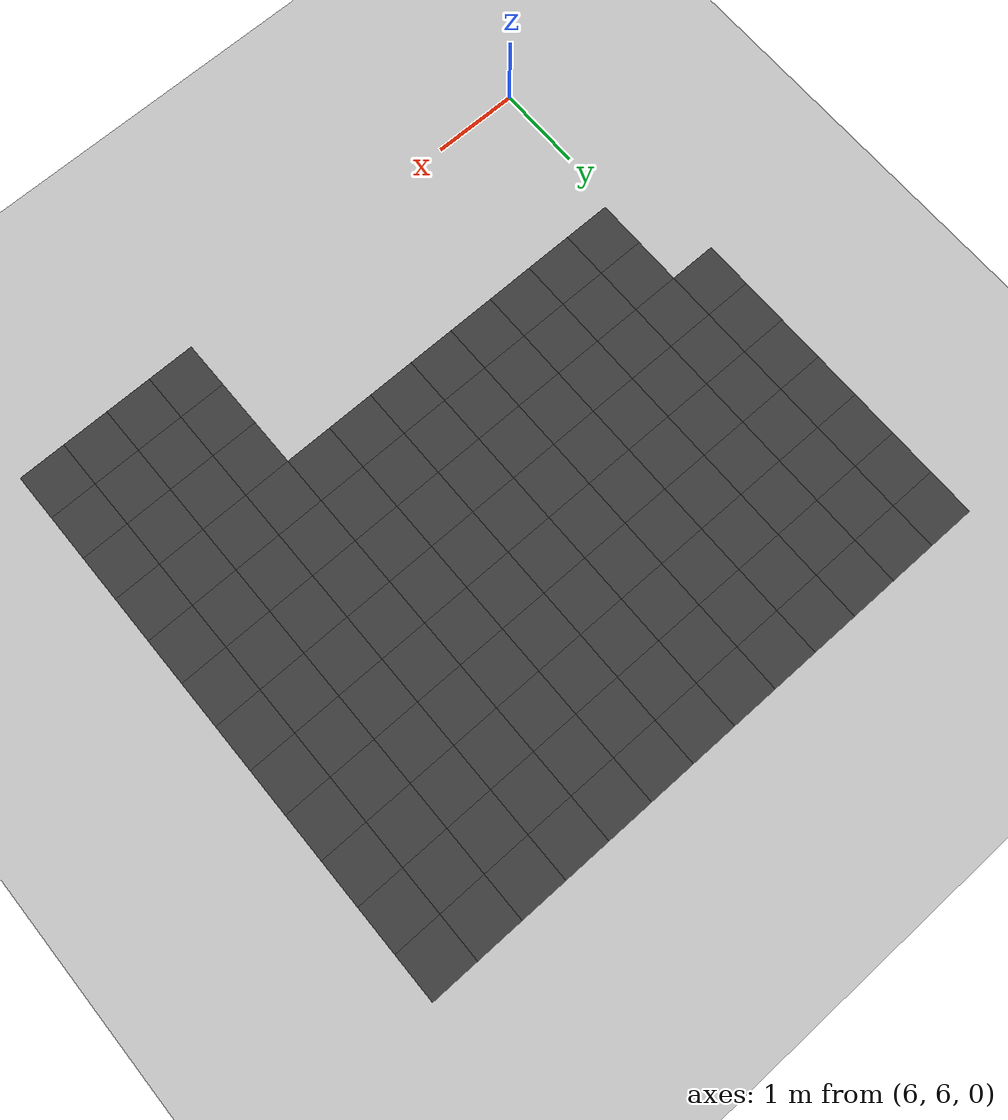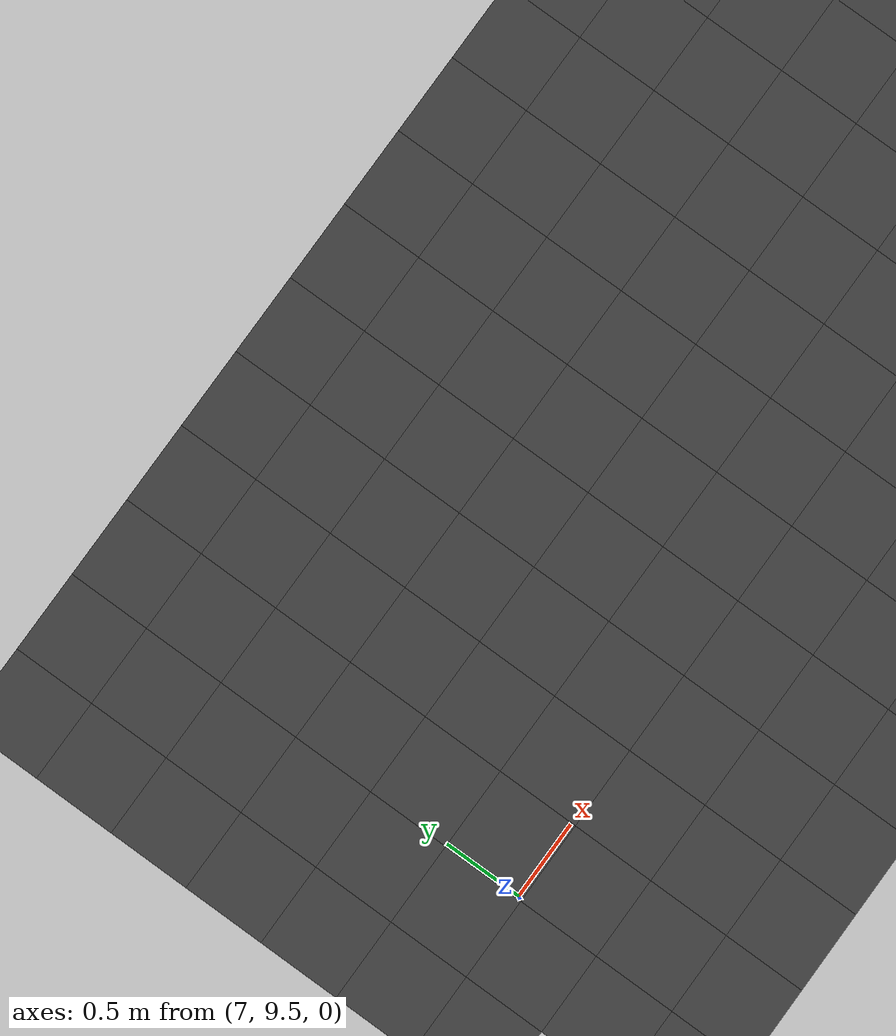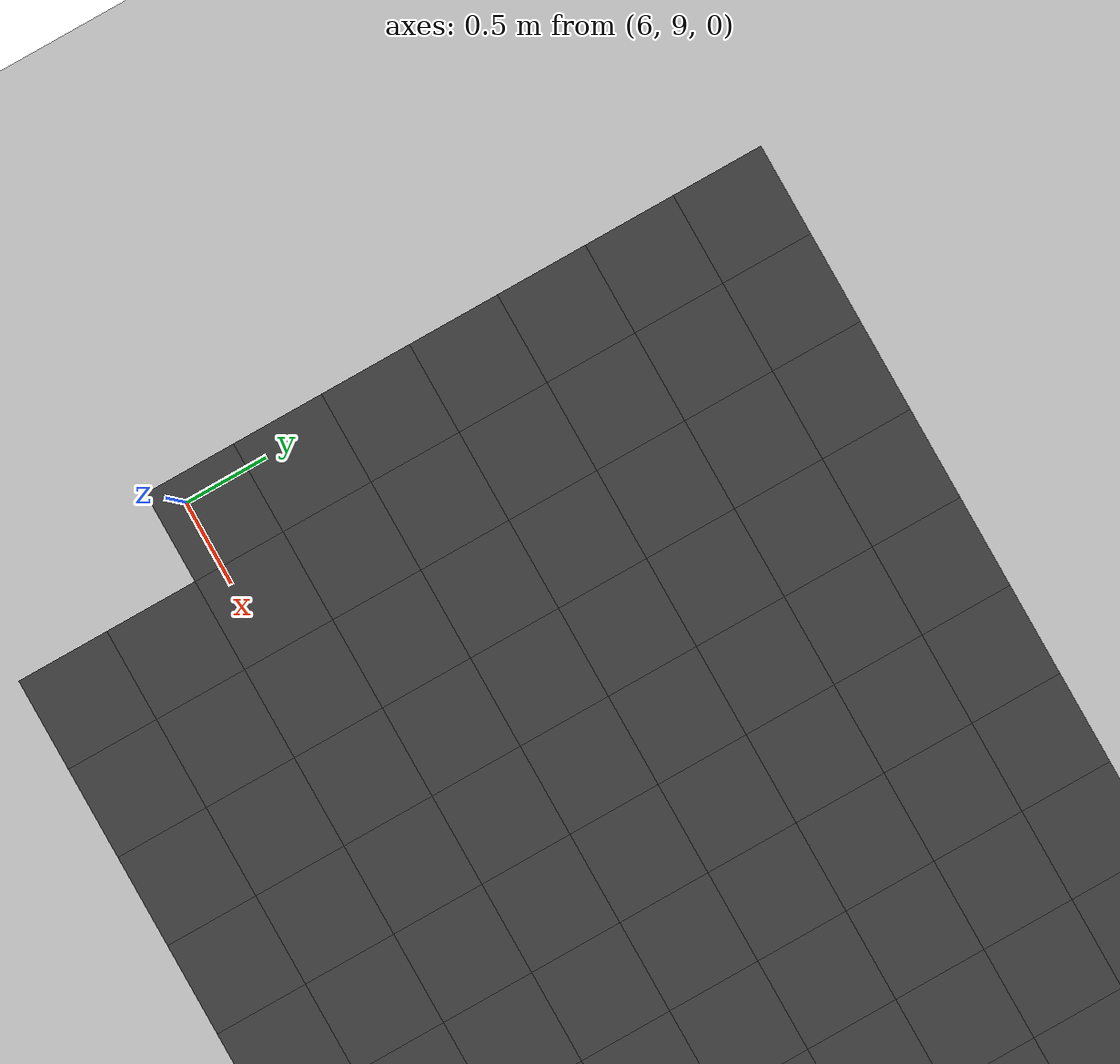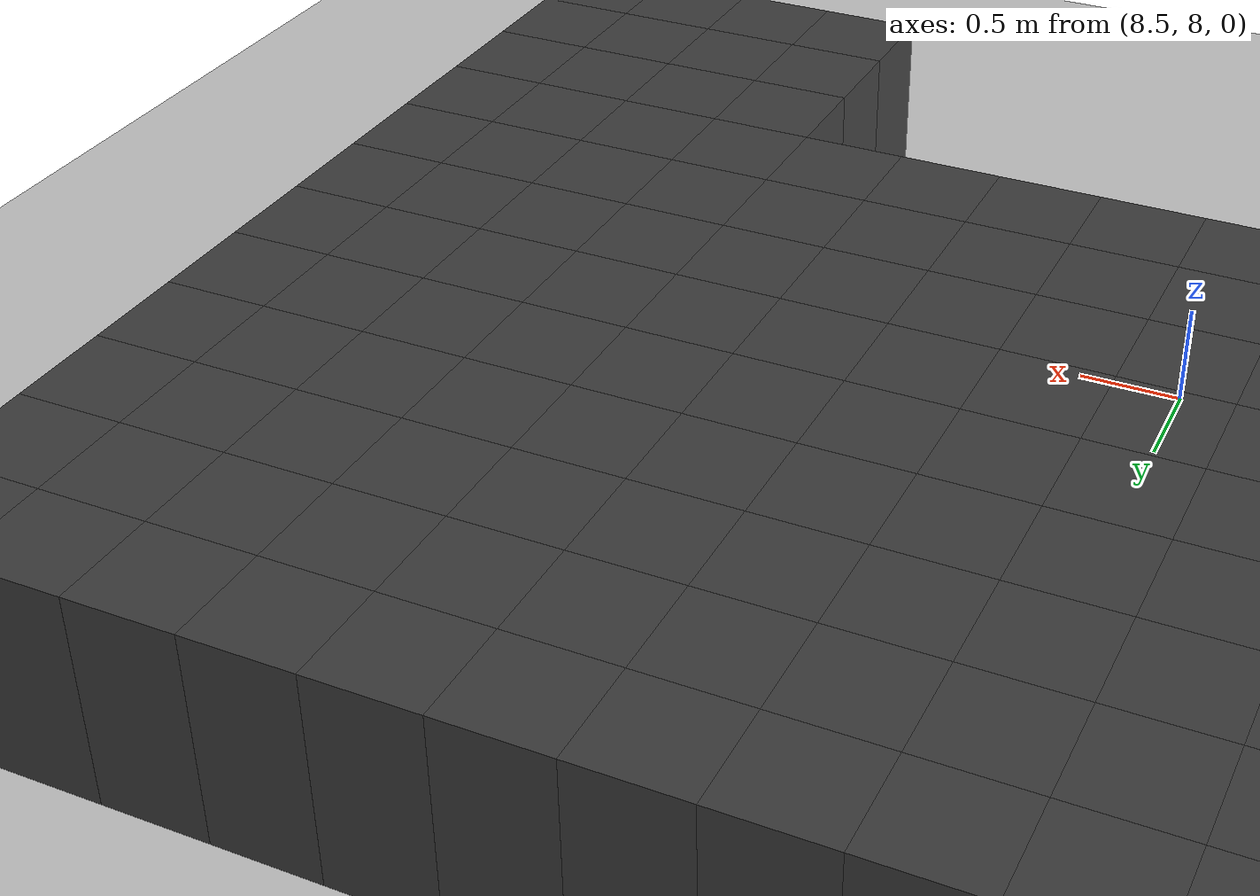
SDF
<sdf version="1.7">
 <world name="map_11779">
  <model name="ground_plane">
   <static>true</static>
   <link name="link">
    <collision name="collision">
     <geometry><plane><normal>0 0 1</normal><size>200 200</size></plane></geometry>
    </collision>
    <visual name="visual">
     <geometry><plane><normal>0 0 1</normal><size>200 200</size></plane></geometry>
     <material><ambient>0.8 0.8 0.8 1</ambient><diffuse>0.8 0.8 0.8 1</diffuse></material>
    </visual>
   </link>
  </model>
  <model name="maze_environment">
   <static>true</static>
   <link name="wall_37">
    <pose>6.250 12.250 0.500 0 0 0</pose>
    <collision name="col"><geometry><box><size>0.5 0.5 1.0</size></box></geometry></collision>
    <visual name="vis">
     <geometry><box><size>0.5 0.5 1.0</size></box></geometry>
     <material><ambient>0.15 0.15 0.15 1</ambient><diffuse>0.25 0.25 0.25 1</diffuse></material>
    </visual>
   </link>
   <link name="wall_38">
    <pose>6.750 12.250 0.500 0 0 0</pose>
    <collision name="col"><geometry><box><size>0.5 0.5 1.0</size></box></geometry></collision>
    <visual name="vis">
     <geometry><box><size>0.5 0.5 1.0</size></box></geometry>
     <material><ambient>0.15 0.15 0.15 1</ambient><diffuse>0.25 0.25 0.25 1</diffuse></material>
    </visual>
   </link>
   <link name="wall_39">
    <pose>7.250 12.250 0.500 0 0 0</pose>
    <collision name="col"><geometry><box><size>0.5 0.5 1.0</size></box></geometry></collision>
    <visual name="vis">
     <geometry><box><size>0.5 0.5 1.0</size></box></geometry>
     <material><ambient>0.15 0.15 0.15 1</ambient><diffuse>0.25 0.25 0.25 1</diffuse></material>
    </visual>
   </link>
   <link name="wall_40">
    <pose>7.750 12.250 0.500 0 0 0</pose>
    <collision name="col"><geometry><box><size>0.5 0.5 1.0</size></box></geometry></collision>
    <visual name="vis">
     <geometry><box><size>0.5 0.5 1.0</size></box></geometry>
     <material><ambient>0.15 0.15 0.15 1</ambient><diffuse>0.25 0.25 0.25 1</diffuse></material>
    </visual>
   </link>
   <link name="wall_41">
    <pose>8.250 12.250 0.500 0 0 0</pose>
    <collision name="col"><geometry><box><size>0.5 0.5 1.0</size></box></geometry></collision>
    <visual name="vis">
     <geometry><box><size>0.5 0.5 1.0</size></box></geometry>
     <material><ambient>0.15 0.15 0.15 1</ambient><diffuse>0.25 0.25 0.25 1</diffuse></material>
    </visual>
   </link>
   <link name="wall_42">
    <pose>8.750 12.250 0.500 0 0 0</pose>
    <collision name="col"><geometry><box><size>0.5 0.5 1.0</size></box></geometry></collision>
    <visual name="vis">
     <geometry><box><size>0.5 0.5 1.0</size></box></geometry>
     <material><ambient>0.15 0.15 0.15 1</ambient><diffuse>0.25 0.25 0.25 1</diffuse></material>
    </visual>
   </link>
   <link name="wall_43">
    <pose>9.250 12.250 0.500 0 0 0</pose>
    <collision name="col"><geometry><box><size>0.5 0.5 1.0</size></box></geometry></collision>
    <visual name="vis">
     <geometry><box><size>0.5 0.5 1.0</size></box></geometry>
     <material><ambient>0.15 0.15 0.15 1</ambient><diffuse>0.25 0.25 0.25 1</diffuse></material>
    </visual>
   </link>
   <link name="wall_44">
    <pose>9.750 12.250 0.500 0 0 0</pose>
    <collision name="col"><geometry><box><size>0.5 0.5 1.0</size></box></geometry></collision>
    <visual name="vis">
     <geometry><box><size>0.5 0.5 1.0</size></box></geometry>
     <material><ambient>0.15 0.15 0.15 1</ambient><diffuse>0.25 0.25 0.25 1</diffuse></material>
    </visual>
   </link>
   <link name="wall_45">
    <pose>10.250 12.250 0.500 0 0 0</pose>
    <collision name="col"><geometry><box><size>0.5 0.5 1.0</size></box></geometry></collision>
    <visual name="vis">
     <geometry><box><size>0.5 0.5 1.0</size></box></geometry>
     <material><ambient>0.15 0.15 0.15 1</ambient><diffuse>0.25 0.25 0.25 1</diffuse></material>
    </visual>
   </link>
   <link name="wall_46">
    <pose>10.750 12.250 0.500 0 0 0</pose>
    <collision name="col"><geometry><box><size>0.5 0.5 1.0</size></box></geometry></collision>
    <visual name="vis">
     <geometry><box><size>0.5 0.5 1.0</size></box></geometry>
     <material><ambient>0.15 0.15 0.15 1</ambient><diffuse>0.25 0.25 0.25 1</diffuse></material>
    </visual>
   </link>
   <link name="wall_47">
    <pose>11.250 12.250 0.500 0 0 0</pose>
    <collision name="col"><geometry><box><size>0.5 0.5 1.0</size></box></geometry></collision>
    <visual name="vis">
     <geometry><box><size>0.5 0.5 1.0</size></box></geometry>
     <material><ambient>0.15 0.15 0.15 1</ambient><diffuse>0.25 0.25 0.25 1</diffuse></material>
    </visual>
   </link>
   <link name="wall_48">
    <pose>11.750 12.250 0.500 0 0 0</pose>
    <collision name="col"><geometry><box><size>0.5 0.5 1.0</size></box></geometry></collision>
    <visual name="vis">
     <geometry><box><size>0.5 0.5 1.0</size></box></geometry>
     <material><ambient>0.15 0.15 0.15 1</ambient><diffuse>0.25 0.25 0.25 1</diffuse></material>
    </visual>
   </link>
   <link name="wall_49">
    <pose>12.250 12.250 0.500 0 0 0</pose>
    <collision name="col"><geometry><box><size>0.5 0.5 1.0</size></box></geometry></collision>
    <visual name="vis">
     <geometry><box><size>0.5 0.5 1.0</size></box></geometry>
     <material><ambient>0.15 0.15 0.15 1</ambient><diffuse>0.25 0.25 0.25 1</diffuse></material>
    </visual>
   </link>
   <link name="wall_78">
    <pose>6.250 11.750 0.500 0 0 0</pose>
    <collision name="col"><geometry><box><size>0.5 0.5 1.0</size></box></geometry></collision>
    <visual name="vis">
     <geometry><box><size>0.5 0.5 1.0</size></box></geometry>
     <material><ambient>0.15 0.15 0.15 1</ambient><diffuse>0.25 0.25 0.25 1</diffuse></material>
    </visual>
   </link>
   <link name="wall_79">
    <pose>6.750 11.750 0.500 0 0 0</pose>
    <collision name="col"><geometry><box><size>0.5 0.5 1.0</size></box></geometry></collision>
    <visual name="vis">
     <geometry><box><size>0.5 0.5 1.0</size></box></geometry>
     <material><ambient>0.15 0.15 0.15 1</ambient><diffuse>0.25 0.25 0.25 1</diffuse></material>
    </visual>
   </link>
   <link name="wall_80">
    <pose>7.250 11.750 0.500 0 0 0</pose>
    <collision name="col"><geometry><box><size>0.5 0.5 1.0</size></box></geometry></collision>
    <visual name="vis">
     <geometry><box><size>0.5 0.5 1.0</size></box></geometry>
     <material><ambient>0.15 0.15 0.15 1</ambient><diffuse>0.25 0.25 0.25 1</diffuse></material>
    </visual>
   </link>
   <link name="wall_81">
    <pose>7.750 11.750 0.500 0 0 0</pose>
    <collision name="col"><geometry><box><size>0.5 0.5 1.0</size></box></geometry></collision>
    <visual name="vis">
     <geometry><box><size>0.5 0.5 1.0</size></box></geometry>
     <material><ambient>0.15 0.15 0.15 1</ambient><diffuse>0.25 0.25 0.25 1</diffuse></material>
    </visual>
   </link>
   <link name="wall_82">
    <pose>8.250 11.750 0.500 0 0 0</pose>
    <collision name="col"><geometry><box><size>0.5 0.5 1.0</size></box></geometry></collision>
    <visual name="vis">
     <geometry><box><size>0.5 0.5 1.0</size></box></geometry>
     <material><ambient>0.15 0.15 0.15 1</ambient><diffuse>0.25 0.25 0.25 1</diffuse></material>
    </visual>
   </link>
   <link name="wall_83">
    <pose>8.750 11.750 0.500 0 0 0</pose>
    <collision name="col"><geometry><box><size>0.5 0.5 1.0</size></box></geometry></collision>
    <visual name="vis">
     <geometry><box><size>0.5 0.5 1.0</size></box></geometry>
     <material><ambient>0.15 0.15 0.15 1</ambient><diffuse>0.25 0.25 0.25 1</diffuse></material>
    </visual>
   </link>
   <link name="wall_84">
    <pose>9.250 11.750 0.500 0 0 0</pose>
    <collision name="col"><geometry><box><size>0.5 0.5 1.0</size></box></geometry></collision>
    <visual name="vis">
     <geometry><box><size>0.5 0.5 1.0</size></box></geometry>
     <material><ambient>0.15 0.15 0.15 1</ambient><diffuse>0.25 0.25 0.25 1</diffuse></material>
    </visual>
   </link>
   <link name="wall_85">
    <pose>9.750 11.750 0.500 0 0 0</pose>
    <collision name="col"><geometry><box><size>0.5 0.5 1.0</size></box></geometry></collision>
    <visual name="vis">
     <geometry><box><size>0.5 0.5 1.0</size></box></geometry>
     <material><ambient>0.15 0.15 0.15 1</ambient><diffuse>0.25 0.25 0.25 1</diffuse></material>
    </visual>
   </link>
   <link name="wall_86">
    <pose>10.250 11.750 0.500 0 0 0</pose>
    <collision name="col"><geometry><box><size>0.5 0.5 1.0</size></box></geometry></collision>
    <visual name="vis">
     <geometry><box><size>0.5 0.5 1.0</size></box></geometry>
     <material><ambient>0.15 0.15 0.15 1</ambient><diffuse>0.25 0.25 0.25 1</diffuse></material>
    </visual>
   </link>
   <link name="wall_87">
    <pose>10.750 11.750 0.500 0 0 0</pose>
    <collision name="col"><geometry><box><size>0.5 0.5 1.0</size></box></geometry></collision>
    <visual name="vis">
     <geometry><box><size>0.5 0.5 1.0</size></box></geometry>
     <material><ambient>0.15 0.15 0.15 1</ambient><diffuse>0.25 0.25 0.25 1</diffuse></material>
    </visual>
   </link>
   <link name="wall_88">
    <pose>11.250 11.750 0.500 0 0 0</pose>
    <collision name="col"><geometry><box><size>0.5 0.5 1.0</size></box></geometry></collision>
    <visual name="vis">
     <geometry><box><size>0.5 0.5 1.0</size></box></geometry>
     <material><ambient>0.15 0.15 0.15 1</ambient><diffuse>0.25 0.25 0.25 1</diffuse></material>
    </visual>
   </link>
   <link name="wall_89">
    <pose>11.750 11.750 0.500 0 0 0</pose>
    <collision name="col"><geometry><box><size>0.5 0.5 1.0</size></box></geometry></collision>
    <visual name="vis">
     <geometry><box><size>0.5 0.5 1.0</size></box></geometry>
     <material><ambient>0.15 0.15 0.15 1</ambient><diffuse>0.25 0.25 0.25 1</diffuse></material>
    </visual>
   </link>
   <link name="wall_90">
    <pose>12.250 11.750 0.500 0 0 0</pose>
    <collision name="col"><geometry><box><size>0.5 0.5 1.0</size></box></geometry></collision>
    <visual name="vis">
     <geometry><box><size>0.5 0.5 1.0</size></box></geometry>
     <material><ambient>0.15 0.15 0.15 1</ambient><diffuse>0.25 0.25 0.25 1</diffuse></material>
    </visual>
   </link>
   <link name="wall_119">
    <pose>6.250 11.250 0.500 0 0 0</pose>
    <collision name="col"><geometry><box><size>0.5 0.5 1.0</size></box></geometry></collision>
    <visual name="vis">
     <geometry><box><size>0.5 0.5 1.0</size></box></geometry>
     <material><ambient>0.15 0.15 0.15 1</ambient><diffuse>0.25 0.25 0.25 1</diffuse></material>
    </visual>
   </link>
   <link name="wall_120">
    <pose>6.750 11.250 0.500 0 0 0</pose>
    <collision name="col"><geometry><box><size>0.5 0.5 1.0</size></box></geometry></collision>
    <visual name="vis">
     <geometry><box><size>0.5 0.5 1.0</size></box></geometry>
     <material><ambient>0.15 0.15 0.15 1</ambient><diffuse>0.25 0.25 0.25 1</diffuse></material>
    </visual>
   </link>
   <link name="wall_121">
    <pose>7.250 11.250 0.500 0 0 0</pose>
    <collision name="col"><geometry><box><size>0.5 0.5 1.0</size></box></geometry></collision>
    <visual name="vis">
     <geometry><box><size>0.5 0.5 1.0</size></box></geometry>
     <material><ambient>0.15 0.15 0.15 1</ambient><diffuse>0.25 0.25 0.25 1</diffuse></material>
    </visual>
   </link>
   <link name="wall_122">
    <pose>7.750 11.250 0.500 0 0 0</pose>
    <collision name="col"><geometry><box><size>0.5 0.5 1.0</size></box></geometry></collision>
    <visual name="vis">
     <geometry><box><size>0.5 0.5 1.0</size></box></geometry>
     <material><ambient>0.15 0.15 0.15 1</ambient><diffuse>0.25 0.25 0.25 1</diffuse></material>
    </visual>
   </link>
   <link name="wall_123">
    <pose>8.250 11.250 0.500 0 0 0</pose>
    <collision name="col"><geometry><box><size>0.5 0.5 1.0</size></box></geometry></collision>
    <visual name="vis">
     <geometry><box><size>0.5 0.5 1.0</size></box></geometry>
     <material><ambient>0.15 0.15 0.15 1</ambient><diffuse>0.25 0.25 0.25 1</diffuse></material>
    </visual>
   </link>
   <link name="wall_124">
    <pose>8.750 11.250 0.500 0 0 0</pose>
    <collision name="col"><geometry><box><size>0.5 0.5 1.0</size></box></geometry></collision>
    <visual name="vis">
     <geometry><box><size>0.5 0.5 1.0</size></box></geometry>
     <material><ambient>0.15 0.15 0.15 1</ambient><diffuse>0.25 0.25 0.25 1</diffuse></material>
    </visual>
   </link>
   <link name="wall_125">
    <pose>9.250 11.250 0.500 0 0 0</pose>
    <collision name="col"><geometry><box><size>0.5 0.5 1.0</size></box></geometry></collision>
    <visual name="vis">
     <geometry><box><size>0.5 0.5 1.0</size></box></geometry>
     <material><ambient>0.15 0.15 0.15 1</ambient><diffuse>0.25 0.25 0.25 1</diffuse></material>
    </visual>
   </link>
   <link name="wall_126">
    <pose>9.750 11.250 0.500 0 0 0</pose>
    <collision name="col"><geometry><box><size>0.5 0.5 1.0</size></box></geometry></collision>
    <visual name="vis">
     <geometry><box><size>0.5 0.5 1.0</size></box></geometry>
     <material><ambient>0.15 0.15 0.15 1</ambient><diffuse>0.25 0.25 0.25 1</diffuse></material>
    </visual>
   </link>
   <link name="wall_127">
    <pose>10.250 11.250 0.500 0 0 0</pose>
    <collision name="col"><geometry><box><size>0.5 0.5 1.0</size></box></geometry></collision>
    <visual name="vis">
     <geometry><box><size>0.5 0.5 1.0</size></box></geometry>
     <material><ambient>0.15 0.15 0.15 1</ambient><diffuse>0.25 0.25 0.25 1</diffuse></material>
    </visual>
   </link>
   <link name="wall_128">
    <pose>10.750 11.250 0.500 0 0 0</pose>
    <collision name="col"><geometry><box><size>0.5 0.5 1.0</size></box></geometry></collision>
    <visual name="vis">
     <geometry><box><size>0.5 0.5 1.0</size></box></geometry>
     <material><ambient>0.15 0.15 0.15 1</ambient><diffuse>0.25 0.25 0.25 1</diffuse></material>
    </visual>
   </link>
   <link name="wall_129">
    <pose>11.250 11.250 0.500 0 0 0</pose>
    <collision name="col"><geometry><box><size>0.5 0.5 1.0</size></box></geometry></collision>
    <visual name="vis">
     <geometry><box><size>0.5 0.5 1.0</size></box></geometry>
     <material><ambient>0.15 0.15 0.15 1</ambient><diffuse>0.25 0.25 0.25 1</diffuse></material>
    </visual>
   </link>
   <link name="wall_130">
    <pose>11.750 11.250 0.500 0 0 0</pose>
    <collision name="col"><geometry><box><size>0.5 0.5 1.0</size></box></geometry></collision>
    <visual name="vis">
     <geometry><box><size>0.5 0.5 1.0</size></box></geometry>
     <material><ambient>0.15 0.15 0.15 1</ambient><diffuse>0.25 0.25 0.25 1</diffuse></material>
    </visual>
   </link>
   <link name="wall_131">
    <pose>12.250 11.250 0.500 0 0 0</pose>
    <collision name="col"><geometry><box><size>0.5 0.5 1.0</size></box></geometry></collision>
    <visual name="vis">
     <geometry><box><size>0.5 0.5 1.0</size></box></geometry>
     <material><ambient>0.15 0.15 0.15 1</ambient><diffuse>0.25 0.25 0.25 1</diffuse></material>
    </visual>
   </link>
   <link name="wall_160">
    <pose>6.250 10.750 0.500 0 0 0</pose>
    <collision name="col"><geometry><box><size>0.5 0.5 1.0</size></box></geometry></collision>
    <visual name="vis">
     <geometry><box><size>0.5 0.5 1.0</size></box></geometry>
     <material><ambient>0.15 0.15 0.15 1</ambient><diffuse>0.25 0.25 0.25 1</diffuse></material>
    </visual>
   </link>
   <link name="wall_161">
    <pose>6.750 10.750 0.500 0 0 0</pose>
    <collision name="col"><geometry><box><size>0.5 0.5 1.0</size></box></geometry></collision>
    <visual name="vis">
     <geometry><box><size>0.5 0.5 1.0</size></box></geometry>
     <material><ambient>0.15 0.15 0.15 1</ambient><diffuse>0.25 0.25 0.25 1</diffuse></material>
    </visual>
   </link>
   <link name="wall_162">
    <pose>7.250 10.750 0.500 0 0 0</pose>
    <collision name="col"><geometry><box><size>0.5 0.5 1.0</size></box></geometry></collision>
    <visual name="vis">
     <geometry><box><size>0.5 0.5 1.0</size></box></geometry>
     <material><ambient>0.15 0.15 0.15 1</ambient><diffuse>0.25 0.25 0.25 1</diffuse></material>
    </visual>
   </link>
   <link name="wall_163">
    <pose>7.750 10.750 0.500 0 0 0</pose>
    <collision name="col"><geometry><box><size>0.5 0.5 1.0</size></box></geometry></collision>
    <visual name="vis">
     <geometry><box><size>0.5 0.5 1.0</size></box></geometry>
     <material><ambient>0.15 0.15 0.15 1</ambient><diffuse>0.25 0.25 0.25 1</diffuse></material>
    </visual>
   </link>
   <link name="wall_164">
    <pose>8.250 10.750 0.500 0 0 0</pose>
    <collision name="col"><geometry><box><size>0.5 0.5 1.0</size></box></geometry></collision>
    <visual name="vis">
     <geometry><box><size>0.5 0.5 1.0</size></box></geometry>
     <material><ambient>0.15 0.15 0.15 1</ambient><diffuse>0.25 0.25 0.25 1</diffuse></material>
    </visual>
   </link>
   <link name="wall_165">
    <pose>8.750 10.750 0.500 0 0 0</pose>
    <collision name="col"><geometry><box><size>0.5 0.5 1.0</size></box></geometry></collision>
    <visual name="vis">
     <geometry><box><size>0.5 0.5 1.0</size></box></geometry>
     <material><ambient>0.15 0.15 0.15 1</ambient><diffuse>0.25 0.25 0.25 1</diffuse></material>
    </visual>
   </link>
   <link name="wall_166">
    <pose>9.250 10.750 0.500 0 0 0</pose>
    <collision name="col"><geometry><box><size>0.5 0.5 1.0</size></box></geometry></collision>
    <visual name="vis">
     <geometry><box><size>0.5 0.5 1.0</size></box></geometry>
     <material><ambient>0.15 0.15 0.15 1</ambient><diffuse>0.25 0.25 0.25 1</diffuse></material>
    </visual>
   </link>
   <link name="wall_167">
    <pose>9.750 10.750 0.500 0 0 0</pose>
    <collision name="col"><geometry><box><size>0.5 0.5 1.0</size></box></geometry></collision>
    <visual name="vis">
     <geometry><box><size>0.5 0.5 1.0</size></box></geometry>
     <material><ambient>0.15 0.15 0.15 1</ambient><diffuse>0.25 0.25 0.25 1</diffuse></material>
    </visual>
   </link>
   <link name="wall_168">
    <pose>10.250 10.750 0.500 0 0 0</pose>
    <collision name="col"><geometry><box><size>0.5 0.5 1.0</size></box></geometry></collision>
    <visual name="vis">
     <geometry><box><size>0.5 0.5 1.0</size></box></geometry>
     <material><ambient>0.15 0.15 0.15 1</ambient><diffuse>0.25 0.25 0.25 1</diffuse></material>
    </visual>
   </link>
   <link name="wall_169">
    <pose>10.750 10.750 0.500 0 0 0</pose>
    <collision name="col"><geometry><box><size>0.5 0.5 1.0</size></box></geometry></collision>
    <visual name="vis">
     <geometry><box><size>0.5 0.5 1.0</size></box></geometry>
     <material><ambient>0.15 0.15 0.15 1</ambient><diffuse>0.25 0.25 0.25 1</diffuse></material>
    </visual>
   </link>
   <link name="wall_170">
    <pose>11.250 10.750 0.500 0 0 0</pose>
    <collision name="col"><geometry><box><size>0.5 0.5 1.0</size></box></geometry></collision>
    <visual name="vis">
     <geometry><box><size>0.5 0.5 1.0</size></box></geometry>
     <material><ambient>0.15 0.15 0.15 1</ambient><diffuse>0.25 0.25 0.25 1</diffuse></material>
    </visual>
   </link>
   <link name="wall_171">
    <pose>11.750 10.750 0.500 0 0 0</pose>
    <collision name="col"><geometry><box><size>0.5 0.5 1.0</size></box></geometry></collision>
    <visual name="vis">
     <geometry><box><size>0.5 0.5 1.0</size></box></geometry>
     <material><ambient>0.15 0.15 0.15 1</ambient><diffuse>0.25 0.25 0.25 1</diffuse></material>
    </visual>
   </link>
   <link name="wall_172">
    <pose>12.250 10.750 0.500 0 0 0</pose>
    <collision name="col"><geometry><box><size>0.5 0.5 1.0</size></box></geometry></collision>
    <visual name="vis">
     <geometry><box><size>0.5 0.5 1.0</size></box></geometry>
     <material><ambient>0.15 0.15 0.15 1</ambient><diffuse>0.25 0.25 0.25 1</diffuse></material>
    </visual>
   </link>
   <link name="wall_203">
    <pose>6.250 10.250 0.500 0 0 0</pose>
    <collision name="col"><geometry><box><size>0.5 0.5 1.0</size></box></geometry></collision>
    <visual name="vis">
     <geometry><box><size>0.5 0.5 1.0</size></box></geometry>
     <material><ambient>0.15 0.15 0.15 1</ambient><diffuse>0.25 0.25 0.25 1</diffuse></material>
    </visual>
   </link>
   <link name="wall_204">
    <pose>6.750 10.250 0.500 0 0 0</pose>
    <collision name="col"><geometry><box><size>0.5 0.5 1.0</size></box></geometry></collision>
    <visual name="vis">
     <geometry><box><size>0.5 0.5 1.0</size></box></geometry>
     <material><ambient>0.15 0.15 0.15 1</ambient><diffuse>0.25 0.25 0.25 1</diffuse></material>
    </visual>
   </link>
   <link name="wall_205">
    <pose>7.250 10.250 0.500 0 0 0</pose>
    <collision name="col"><geometry><box><size>0.5 0.5 1.0</size></box></geometry></collision>
    <visual name="vis">
     <geometry><box><size>0.5 0.5 1.0</size></box></geometry>
     <material><ambient>0.15 0.15 0.15 1</ambient><diffuse>0.25 0.25 0.25 1</diffuse></material>
    </visual>
   </link>
   <link name="wall_206">
    <pose>7.750 10.250 0.500 0 0 0</pose>
    <collision name="col"><geometry><box><size>0.5 0.5 1.0</size></box></geometry></collision>
    <visual name="vis">
     <geometry><box><size>0.5 0.5 1.0</size></box></geometry>
     <material><ambient>0.15 0.15 0.15 1</ambient><diffuse>0.25 0.25 0.25 1</diffuse></material>
    </visual>
   </link>
   <link name="wall_207">
    <pose>8.250 10.250 0.500 0 0 0</pose>
    <collision name="col"><geometry><box><size>0.5 0.5 1.0</size></box></geometry></collision>
    <visual name="vis">
     <geometry><box><size>0.5 0.5 1.0</size></box></geometry>
     <material><ambient>0.15 0.15 0.15 1</ambient><diffuse>0.25 0.25 0.25 1</diffuse></material>
    </visual>
   </link>
   <link name="wall_208">
    <pose>8.750 10.250 0.500 0 0 0</pose>
    <collision name="col"><geometry><box><size>0.5 0.5 1.0</size></box></geometry></collision>
    <visual name="vis">
     <geometry><box><size>0.5 0.5 1.0</size></box></geometry>
     <material><ambient>0.15 0.15 0.15 1</ambient><diffuse>0.25 0.25 0.25 1</diffuse></material>
    </visual>
   </link>
   <link name="wall_209">
    <pose>9.250 10.250 0.500 0 0 0</pose>
    <collision name="col"><geometry><box><size>0.5 0.5 1.0</size></box></geometry></collision>
    <visual name="vis">
     <geometry><box><size>0.5 0.5 1.0</size></box></geometry>
     <material><ambient>0.15 0.15 0.15 1</ambient><diffuse>0.25 0.25 0.25 1</diffuse></material>
    </visual>
   </link>
   <link name="wall_210">
    <pose>9.750 10.250 0.500 0 0 0</pose>
    <collision name="col"><geometry><box><size>0.5 0.5 1.0</size></box></geometry></collision>
    <visual name="vis">
     <geometry><box><size>0.5 0.5 1.0</size></box></geometry>
     <material><ambient>0.15 0.15 0.15 1</ambient><diffuse>0.25 0.25 0.25 1</diffuse></material>
    </visual>
   </link>
   <link name="wall_211">
    <pose>10.250 10.250 0.500 0 0 0</pose>
    <collision name="col"><geometry><box><size>0.5 0.5 1.0</size></box></geometry></collision>
    <visual name="vis">
     <geometry><box><size>0.5 0.5 1.0</size></box></geometry>
     <material><ambient>0.15 0.15 0.15 1</ambient><diffuse>0.25 0.25 0.25 1</diffuse></material>
    </visual>
   </link>
   <link name="wall_212">
    <pose>10.750 10.250 0.500 0 0 0</pose>
    <collision name="col"><geometry><box><size>0.5 0.5 1.0</size></box></geometry></collision>
    <visual name="vis">
     <geometry><box><size>0.5 0.5 1.0</size></box></geometry>
     <material><ambient>0.15 0.15 0.15 1</ambient><diffuse>0.25 0.25 0.25 1</diffuse></material>
    </visual>
   </link>
   <link name="wall_213">
    <pose>11.250 10.250 0.500 0 0 0</pose>
    <collision name="col"><geometry><box><size>0.5 0.5 1.0</size></box></geometry></collision>
    <visual name="vis">
     <geometry><box><size>0.5 0.5 1.0</size></box></geometry>
     <material><ambient>0.15 0.15 0.15 1</ambient><diffuse>0.25 0.25 0.25 1</diffuse></material>
    </visual>
   </link>
   <link name="wall_214">
    <pose>11.750 10.250 0.500 0 0 0</pose>
    <collision name="col"><geometry><box><size>0.5 0.5 1.0</size></box></geometry></collision>
    <visual name="vis">
     <geometry><box><size>0.5 0.5 1.0</size></box></geometry>
     <material><ambient>0.15 0.15 0.15 1</ambient><diffuse>0.25 0.25 0.25 1</diffuse></material>
    </visual>
   </link>
   <link name="wall_215">
    <pose>12.250 10.250 0.500 0 0 0</pose>
    <collision name="col"><geometry><box><size>0.5 0.5 1.0</size></box></geometry></collision>
    <visual name="vis">
     <geometry><box><size>0.5 0.5 1.0</size></box></geometry>
     <material><ambient>0.15 0.15 0.15 1</ambient><diffuse>0.25 0.25 0.25 1</diffuse></material>
    </visual>
   </link>
   <link name="wall_236">
    <pose>6.250 9.750 0.500 0 0 0</pose>
    <collision name="col"><geometry><box><size>0.5 0.5 1.0</size></box></geometry></collision>
    <visual name="vis">
     <geometry><box><size>0.5 0.5 1.0</size></box></geometry>
     <material><ambient>0.15 0.15 0.15 1</ambient><diffuse>0.25 0.25 0.25 1</diffuse></material>
    </visual>
   </link>
   <link name="wall_237">
    <pose>6.750 9.750 0.500 0 0 0</pose>
    <collision name="col"><geometry><box><size>0.5 0.5 1.0</size></box></geometry></collision>
    <visual name="vis">
     <geometry><box><size>0.5 0.5 1.0</size></box></geometry>
     <material><ambient>0.15 0.15 0.15 1</ambient><diffuse>0.25 0.25 0.25 1</diffuse></material>
    </visual>
   </link>
   <link name="wall_238">
    <pose>7.250 9.750 0.500 0 0 0</pose>
    <collision name="col"><geometry><box><size>0.5 0.5 1.0</size></box></geometry></collision>
    <visual name="vis">
     <geometry><box><size>0.5 0.5 1.0</size></box></geometry>
     <material><ambient>0.15 0.15 0.15 1</ambient><diffuse>0.25 0.25 0.25 1</diffuse></material>
    </visual>
   </link>
   <link name="wall_239">
    <pose>7.750 9.750 0.500 0 0 0</pose>
    <collision name="col"><geometry><box><size>0.5 0.5 1.0</size></box></geometry></collision>
    <visual name="vis">
     <geometry><box><size>0.5 0.5 1.0</size></box></geometry>
     <material><ambient>0.15 0.15 0.15 1</ambient><diffuse>0.25 0.25 0.25 1</diffuse></material>
    </visual>
   </link>
   <link name="wall_240">
    <pose>8.250 9.750 0.500 0 0 0</pose>
    <collision name="col"><geometry><box><size>0.5 0.5 1.0</size></box></geometry></collision>
    <visual name="vis">
     <geometry><box><size>0.5 0.5 1.0</size></box></geometry>
     <material><ambient>0.15 0.15 0.15 1</ambient><diffuse>0.25 0.25 0.25 1</diffuse></material>
    </visual>
   </link>
   <link name="wall_241">
    <pose>8.750 9.750 0.500 0 0 0</pose>
    <collision name="col"><geometry><box><size>0.5 0.5 1.0</size></box></geometry></collision>
    <visual name="vis">
     <geometry><box><size>0.5 0.5 1.0</size></box></geometry>
     <material><ambient>0.15 0.15 0.15 1</ambient><diffuse>0.25 0.25 0.25 1</diffuse></material>
    </visual>
   </link>
   <link name="wall_242">
    <pose>9.250 9.750 0.500 0 0 0</pose>
    <collision name="col"><geometry><box><size>0.5 0.5 1.0</size></box></geometry></collision>
    <visual name="vis">
     <geometry><box><size>0.5 0.5 1.0</size></box></geometry>
     <material><ambient>0.15 0.15 0.15 1</ambient><diffuse>0.25 0.25 0.25 1</diffuse></material>
    </visual>
   </link>
   <link name="wall_243">
    <pose>9.750 9.750 0.500 0 0 0</pose>
    <collision name="col"><geometry><box><size>0.5 0.5 1.0</size></box></geometry></collision>
    <visual name="vis">
     <geometry><box><size>0.5 0.5 1.0</size></box></geometry>
     <material><ambient>0.15 0.15 0.15 1</ambient><diffuse>0.25 0.25 0.25 1</diffuse></material>
    </visual>
   </link>
   <link name="wall_244">
    <pose>10.250 9.750 0.500 0 0 0</pose>
    <collision name="col"><geometry><box><size>0.5 0.5 1.0</size></box></geometry></collision>
    <visual name="vis">
     <geometry><box><size>0.5 0.5 1.0</size></box></geometry>
     <material><ambient>0.15 0.15 0.15 1</ambient><diffuse>0.25 0.25 0.25 1</diffuse></material>
    </visual>
   </link>
   <link name="wall_245">
    <pose>10.750 9.750 0.500 0 0 0</pose>
    <collision name="col"><geometry><box><size>0.5 0.5 1.0</size></box></geometry></collision>
    <visual name="vis">
     <geometry><box><size>0.5 0.5 1.0</size></box></geometry>
     <material><ambient>0.15 0.15 0.15 1</ambient><diffuse>0.25 0.25 0.25 1</diffuse></material>
    </visual>
   </link>
   <link name="wall_246">
    <pose>11.250 9.750 0.500 0 0 0</pose>
    <collision name="col"><geometry><box><size>0.5 0.5 1.0</size></box></geometry></collision>
    <visual name="vis">
     <geometry><box><size>0.5 0.5 1.0</size></box></geometry>
     <material><ambient>0.15 0.15 0.15 1</ambient><diffuse>0.25 0.25 0.25 1</diffuse></material>
    </visual>
   </link>
   <link name="wall_247">
    <pose>11.750 9.750 0.500 0 0 0</pose>
    <collision name="col"><geometry><box><size>0.5 0.5 1.0</size></box></geometry></collision>
    <visual name="vis">
     <geometry><box><size>0.5 0.5 1.0</size></box></geometry>
     <material><ambient>0.15 0.15 0.15 1</ambient><diffuse>0.25 0.25 0.25 1</diffuse></material>
    </visual>
   </link>
   <link name="wall_248">
    <pose>12.250 9.750 0.500 0 0 0</pose>
    <collision name="col"><geometry><box><size>0.5 0.5 1.0</size></box></geometry></collision>
    <visual name="vis">
     <geometry><box><size>0.5 0.5 1.0</size></box></geometry>
     <material><ambient>0.15 0.15 0.15 1</ambient><diffuse>0.25 0.25 0.25 1</diffuse></material>
    </visual>
   </link>
   <link name="wall_280">
    <pose>6.250 9.250 0.500 0 0 0</pose>
    <collision name="col"><geometry><box><size>0.5 0.5 1.0</size></box></geometry></collision>
    <visual name="vis">
     <geometry><box><size>0.5 0.5 1.0</size></box></geometry>
     <material><ambient>0.15 0.15 0.15 1</ambient><diffuse>0.25 0.25 0.25 1</diffuse></material>
    </visual>
   </link>
   <link name="wall_281">
    <pose>6.750 9.250 0.500 0 0 0</pose>
    <collision name="col"><geometry><box><size>0.5 0.5 1.0</size></box></geometry></collision>
    <visual name="vis">
     <geometry><box><size>0.5 0.5 1.0</size></box></geometry>
     <material><ambient>0.15 0.15 0.15 1</ambient><diffuse>0.25 0.25 0.25 1</diffuse></material>
    </visual>
   </link>
   <link name="wall_282">
    <pose>7.250 9.250 0.500 0 0 0</pose>
    <collision name="col"><geometry><box><size>0.5 0.5 1.0</size></box></geometry></collision>
    <visual name="vis">
     <geometry><box><size>0.5 0.5 1.0</size></box></geometry>
     <material><ambient>0.15 0.15 0.15 1</ambient><diffuse>0.25 0.25 0.25 1</diffuse></material>
    </visual>
   </link>
   <link name="wall_283">
    <pose>7.750 9.250 0.500 0 0 0</pose>
    <collision name="col"><geometry><box><size>0.5 0.5 1.0</size></box></geometry></collision>
    <visual name="vis">
     <geometry><box><size>0.5 0.5 1.0</size></box></geometry>
     <material><ambient>0.15 0.15 0.15 1</ambient><diffuse>0.25 0.25 0.25 1</diffuse></material>
    </visual>
   </link>
   <link name="wall_284">
    <pose>8.250 9.250 0.500 0 0 0</pose>
    <collision name="col"><geometry><box><size>0.5 0.5 1.0</size></box></geometry></collision>
    <visual name="vis">
     <geometry><box><size>0.5 0.5 1.0</size></box></geometry>
     <material><ambient>0.15 0.15 0.15 1</ambient><diffuse>0.25 0.25 0.25 1</diffuse></material>
    </visual>
   </link>
   <link name="wall_285">
    <pose>8.750 9.250 0.500 0 0 0</pose>
    <collision name="col"><geometry><box><size>0.5 0.5 1.0</size></box></geometry></collision>
    <visual name="vis">
     <geometry><box><size>0.5 0.5 1.0</size></box></geometry>
     <material><ambient>0.15 0.15 0.15 1</ambient><diffuse>0.25 0.25 0.25 1</diffuse></material>
    </visual>
   </link>
   <link name="wall_286">
    <pose>9.250 9.250 0.500 0 0 0</pose>
    <collision name="col"><geometry><box><size>0.5 0.5 1.0</size></box></geometry></collision>
    <visual name="vis">
     <geometry><box><size>0.5 0.5 1.0</size></box></geometry>
     <material><ambient>0.15 0.15 0.15 1</ambient><diffuse>0.25 0.25 0.25 1</diffuse></material>
    </visual>
   </link>
   <link name="wall_287">
    <pose>9.750 9.250 0.500 0 0 0</pose>
    <collision name="col"><geometry><box><size>0.5 0.5 1.0</size></box></geometry></collision>
    <visual name="vis">
     <geometry><box><size>0.5 0.5 1.0</size></box></geometry>
     <material><ambient>0.15 0.15 0.15 1</ambient><diffuse>0.25 0.25 0.25 1</diffuse></material>
    </visual>
   </link>
   <link name="wall_288">
    <pose>10.250 9.250 0.500 0 0 0</pose>
    <collision name="col"><geometry><box><size>0.5 0.5 1.0</size></box></geometry></collision>
    <visual name="vis">
     <geometry><box><size>0.5 0.5 1.0</size></box></geometry>
     <material><ambient>0.15 0.15 0.15 1</ambient><diffuse>0.25 0.25 0.25 1</diffuse></material>
    </visual>
   </link>
   <link name="wall_289">
    <pose>10.750 9.250 0.500 0 0 0</pose>
    <collision name="col"><geometry><box><size>0.5 0.5 1.0</size></box></geometry></collision>
    <visual name="vis">
     <geometry><box><size>0.5 0.5 1.0</size></box></geometry>
     <material><ambient>0.15 0.15 0.15 1</ambient><diffuse>0.25 0.25 0.25 1</diffuse></material>
    </visual>
   </link>
   <link name="wall_290">
    <pose>11.250 9.250 0.500 0 0 0</pose>
    <collision name="col"><geometry><box><size>0.5 0.5 1.0</size></box></geometry></collision>
    <visual name="vis">
     <geometry><box><size>0.5 0.5 1.0</size></box></geometry>
     <material><ambient>0.15 0.15 0.15 1</ambient><diffuse>0.25 0.25 0.25 1</diffuse></material>
    </visual>
   </link>
   <link name="wall_291">
    <pose>11.750 9.250 0.500 0 0 0</pose>
    <collision name="col"><geometry><box><size>0.5 0.5 1.0</size></box></geometry></collision>
    <visual name="vis">
     <geometry><box><size>0.5 0.5 1.0</size></box></geometry>
     <material><ambient>0.15 0.15 0.15 1</ambient><diffuse>0.25 0.25 0.25 1</diffuse></material>
    </visual>
   </link>
   <link name="wall_292">
    <pose>12.250 9.250 0.500 0 0 0</pose>
    <collision name="col"><geometry><box><size>0.5 0.5 1.0</size></box></geometry></collision>
    <visual name="vis">
     <geometry><box><size>0.5 0.5 1.0</size></box></geometry>
     <material><ambient>0.15 0.15 0.15 1</ambient><diffuse>0.25 0.25 0.25 1</diffuse></material>
    </visual>
   </link>
   <link name="wall_325">
    <pose>6.750 8.750 0.500 0 0 0</pose>
    <collision name="col"><geometry><box><size>0.5 0.5 1.0</size></box></geometry></collision>
    <visual name="vis">
     <geometry><box><size>0.5 0.5 1.0</size></box></geometry>
     <material><ambient>0.15 0.15 0.15 1</ambient><diffuse>0.25 0.25 0.25 1</diffuse></material>
    </visual>
   </link>
   <link name="wall_326">
    <pose>7.250 8.750 0.500 0 0 0</pose>
    <collision name="col"><geometry><box><size>0.5 0.5 1.0</size></box></geometry></collision>
    <visual name="vis">
     <geometry><box><size>0.5 0.5 1.0</size></box></geometry>
     <material><ambient>0.15 0.15 0.15 1</ambient><diffuse>0.25 0.25 0.25 1</diffuse></material>
    </visual>
   </link>
   <link name="wall_327">
    <pose>7.750 8.750 0.500 0 0 0</pose>
    <collision name="col"><geometry><box><size>0.5 0.5 1.0</size></box></geometry></collision>
    <visual name="vis">
     <geometry><box><size>0.5 0.5 1.0</size></box></geometry>
     <material><ambient>0.15 0.15 0.15 1</ambient><diffuse>0.25 0.25 0.25 1</diffuse></material>
    </visual>
   </link>
   <link name="wall_328">
    <pose>8.250 8.750 0.500 0 0 0</pose>
    <collision name="col"><geometry><box><size>0.5 0.5 1.0</size></box></geometry></collision>
    <visual name="vis">
     <geometry><box><size>0.5 0.5 1.0</size></box></geometry>
     <material><ambient>0.15 0.15 0.15 1</ambient><diffuse>0.25 0.25 0.25 1</diffuse></material>
    </visual>
   </link>
   <link name="wall_329">
    <pose>8.750 8.750 0.500 0 0 0</pose>
    <collision name="col"><geometry><box><size>0.5 0.5 1.0</size></box></geometry></collision>
    <visual name="vis">
     <geometry><box><size>0.5 0.5 1.0</size></box></geometry>
     <material><ambient>0.15 0.15 0.15 1</ambient><diffuse>0.25 0.25 0.25 1</diffuse></material>
    </visual>
   </link>
   <link name="wall_330">
    <pose>9.250 8.750 0.500 0 0 0</pose>
    <collision name="col"><geometry><box><size>0.5 0.5 1.0</size></box></geometry></collision>
    <visual name="vis">
     <geometry><box><size>0.5 0.5 1.0</size></box></geometry>
     <material><ambient>0.15 0.15 0.15 1</ambient><diffuse>0.25 0.25 0.25 1</diffuse></material>
    </visual>
   </link>
   <link name="wall_331">
    <pose>9.750 8.750 0.500 0 0 0</pose>
    <collision name="col"><geometry><box><size>0.5 0.5 1.0</size></box></geometry></collision>
    <visual name="vis">
     <geometry><box><size>0.5 0.5 1.0</size></box></geometry>
     <material><ambient>0.15 0.15 0.15 1</ambient><diffuse>0.25 0.25 0.25 1</diffuse></material>
    </visual>
   </link>
   <link name="wall_332">
    <pose>10.250 8.750 0.500 0 0 0</pose>
    <collision name="col"><geometry><box><size>0.5 0.5 1.0</size></box></geometry></collision>
    <visual name="vis">
     <geometry><box><size>0.5 0.5 1.0</size></box></geometry>
     <material><ambient>0.15 0.15 0.15 1</ambient><diffuse>0.25 0.25 0.25 1</diffuse></material>
    </visual>
   </link>
   <link name="wall_333">
    <pose>10.750 8.750 0.500 0 0 0</pose>
    <collision name="col"><geometry><box><size>0.5 0.5 1.0</size></box></geometry></collision>
    <visual name="vis">
     <geometry><box><size>0.5 0.5 1.0</size></box></geometry>
     <material><ambient>0.15 0.15 0.15 1</ambient><diffuse>0.25 0.25 0.25 1</diffuse></material>
    </visual>
   </link>
   <link name="wall_334">
    <pose>11.250 8.750 0.500 0 0 0</pose>
    <collision name="col"><geometry><box><size>0.5 0.5 1.0</size></box></geometry></collision>
    <visual name="vis">
     <geometry><box><size>0.5 0.5 1.0</size></box></geometry>
     <material><ambient>0.15 0.15 0.15 1</ambient><diffuse>0.25 0.25 0.25 1</diffuse></material>
    </visual>
   </link>
   <link name="wall_335">
    <pose>11.750 8.750 0.500 0 0 0</pose>
    <collision name="col"><geometry><box><size>0.5 0.5 1.0</size></box></geometry></collision>
    <visual name="vis">
     <geometry><box><size>0.5 0.5 1.0</size></box></geometry>
     <material><ambient>0.15 0.15 0.15 1</ambient><diffuse>0.25 0.25 0.25 1</diffuse></material>
    </visual>
   </link>
   <link name="wall_336">
    <pose>12.250 8.750 0.500 0 0 0</pose>
    <collision name="col"><geometry><box><size>0.5 0.5 1.0</size></box></geometry></collision>
    <visual name="vis">
     <geometry><box><size>0.5 0.5 1.0</size></box></geometry>
     <material><ambient>0.15 0.15 0.15 1</ambient><diffuse>0.25 0.25 0.25 1</diffuse></material>
    </visual>
   </link>
   <link name="wall_369">
    <pose>6.750 8.250 0.500 0 0 0</pose>
    <collision name="col"><geometry><box><size>0.5 0.5 1.0</size></box></geometry></collision>
    <visual name="vis">
     <geometry><box><size>0.5 0.5 1.0</size></box></geometry>
     <material><ambient>0.15 0.15 0.15 1</ambient><diffuse>0.25 0.25 0.25 1</diffuse></material>
    </visual>
   </link>
   <link name="wall_370">
    <pose>7.250 8.250 0.500 0 0 0</pose>
    <collision name="col"><geometry><box><size>0.5 0.5 1.0</size></box></geometry></collision>
    <visual name="vis">
     <geometry><box><size>0.5 0.5 1.0</size></box></geometry>
     <material><ambient>0.15 0.15 0.15 1</ambient><diffuse>0.25 0.25 0.25 1</diffuse></material>
    </visual>
   </link>
   <link name="wall_371">
    <pose>7.750 8.250 0.500 0 0 0</pose>
    <collision name="col"><geometry><box><size>0.5 0.5 1.0</size></box></geometry></collision>
    <visual name="vis">
     <geometry><box><size>0.5 0.5 1.0</size></box></geometry>
     <material><ambient>0.15 0.15 0.15 1</ambient><diffuse>0.25 0.25 0.25 1</diffuse></material>
    </visual>
   </link>
   <link name="wall_372">
    <pose>8.250 8.250 0.500 0 0 0</pose>
    <collision name="col"><geometry><box><size>0.5 0.5 1.0</size></box></geometry></collision>
    <visual name="vis">
     <geometry><box><size>0.5 0.5 1.0</size></box></geometry>
     <material><ambient>0.15 0.15 0.15 1</ambient><diffuse>0.25 0.25 0.25 1</diffuse></material>
    </visual>
   </link>
   <link name="wall_373">
    <pose>8.750 8.250 0.500 0 0 0</pose>
    <collision name="col"><geometry><box><size>0.5 0.5 1.0</size></box></geometry></collision>
    <visual name="vis">
     <geometry><box><size>0.5 0.5 1.0</size></box></geometry>
     <material><ambient>0.15 0.15 0.15 1</ambient><diffuse>0.25 0.25 0.25 1</diffuse></material>
    </visual>
   </link>
   <link name="wall_374">
    <pose>9.250 8.250 0.500 0 0 0</pose>
    <collision name="col"><geometry><box><size>0.5 0.5 1.0</size></box></geometry></collision>
    <visual name="vis">
     <geometry><box><size>0.5 0.5 1.0</size></box></geometry>
     <material><ambient>0.15 0.15 0.15 1</ambient><diffuse>0.25 0.25 0.25 1</diffuse></material>
    </visual>
   </link>
   <link name="wall_375">
    <pose>9.750 8.250 0.500 0 0 0</pose>
    <collision name="col"><geometry><box><size>0.5 0.5 1.0</size></box></geometry></collision>
    <visual name="vis">
     <geometry><box><size>0.5 0.5 1.0</size></box></geometry>
     <material><ambient>0.15 0.15 0.15 1</ambient><diffuse>0.25 0.25 0.25 1</diffuse></material>
    </visual>
   </link>
   <link name="wall_376">
    <pose>10.250 8.250 0.500 0 0 0</pose>
    <collision name="col"><geometry><box><size>0.5 0.5 1.0</size></box></geometry></collision>
    <visual name="vis">
     <geometry><box><size>0.5 0.5 1.0</size></box></geometry>
     <material><ambient>0.15 0.15 0.15 1</ambient><diffuse>0.25 0.25 0.25 1</diffuse></material>
    </visual>
   </link>
   <link name="wall_377">
    <pose>10.750 8.250 0.500 0 0 0</pose>
    <collision name="col"><geometry><box><size>0.5 0.5 1.0</size></box></geometry></collision>
    <visual name="vis">
     <geometry><box><size>0.5 0.5 1.0</size></box></geometry>
     <material><ambient>0.15 0.15 0.15 1</ambient><diffuse>0.25 0.25 0.25 1</diffuse></material>
    </visual>
   </link>
   <link name="wall_378">
    <pose>11.250 8.250 0.500 0 0 0</pose>
    <collision name="col"><geometry><box><size>0.5 0.5 1.0</size></box></geometry></collision>
    <visual name="vis">
     <geometry><box><size>0.5 0.5 1.0</size></box></geometry>
     <material><ambient>0.15 0.15 0.15 1</ambient><diffuse>0.25 0.25 0.25 1</diffuse></material>
    </visual>
   </link>
   <link name="wall_379">
    <pose>11.750 8.250 0.500 0 0 0</pose>
    <collision name="col"><geometry><box><size>0.5 0.5 1.0</size></box></geometry></collision>
    <visual name="vis">
     <geometry><box><size>0.5 0.5 1.0</size></box></geometry>
     <material><ambient>0.15 0.15 0.15 1</ambient><diffuse>0.25 0.25 0.25 1</diffuse></material>
    </visual>
   </link>
   <link name="wall_380">
    <pose>12.250 8.250 0.500 0 0 0</pose>
    <collision name="col"><geometry><box><size>0.5 0.5 1.0</size></box></geometry></collision>
    <visual name="vis">
     <geometry><box><size>0.5 0.5 1.0</size></box></geometry>
     <material><ambient>0.15 0.15 0.15 1</ambient><diffuse>0.25 0.25 0.25 1</diffuse></material>
    </visual>
   </link>
   <link name="wall_418">
    <pose>10.750 7.750 0.500 0 0 0</pose>
    <collision name="col"><geometry><box><size>0.5 0.5 1.0</size></box></geometry></collision>
    <visual name="vis">
     <geometry><box><size>0.5 0.5 1.0</size></box></geometry>
     <material><ambient>0.15 0.15 0.15 1</ambient><diffuse>0.25 0.25 0.25 1</diffuse></material>
    </visual>
   </link>
   <link name="wall_419">
    <pose>11.250 7.750 0.500 0 0 0</pose>
    <collision name="col"><geometry><box><size>0.5 0.5 1.0</size></box></geometry></collision>
    <visual name="vis">
     <geometry><box><size>0.5 0.5 1.0</size></box></geometry>
     <material><ambient>0.15 0.15 0.15 1</ambient><diffuse>0.25 0.25 0.25 1</diffuse></material>
    </visual>
   </link>
   <link name="wall_420">
    <pose>11.750 7.750 0.500 0 0 0</pose>
    <collision name="col"><geometry><box><size>0.5 0.5 1.0</size></box></geometry></collision>
    <visual name="vis">
     <geometry><box><size>0.5 0.5 1.0</size></box></geometry>
     <material><ambient>0.15 0.15 0.15 1</ambient><diffuse>0.25 0.25 0.25 1</diffuse></material>
    </visual>
   </link>
   <link name="wall_421">
    <pose>12.250 7.750 0.500 0 0 0</pose>
    <collision name="col"><geometry><box><size>0.5 0.5 1.0</size></box></geometry></collision>
    <visual name="vis">
     <geometry><box><size>0.5 0.5 1.0</size></box></geometry>
     <material><ambient>0.15 0.15 0.15 1</ambient><diffuse>0.25 0.25 0.25 1</diffuse></material>
    </visual>
   </link>
   <link name="wall_459">
    <pose>10.750 7.250 0.500 0 0 0</pose>
    <collision name="col"><geometry><box><size>0.5 0.5 1.0</size></box></geometry></collision>
    <visual name="vis">
     <geometry><box><size>0.5 0.5 1.0</size></box></geometry>
     <material><ambient>0.15 0.15 0.15 1</ambient><diffuse>0.25 0.25 0.25 1</diffuse></material>
    </visual>
   </link>
   <link name="wall_460">
    <pose>11.250 7.250 0.500 0 0 0</pose>
    <collision name="col"><geometry><box><size>0.5 0.5 1.0</size></box></geometry></collision>
    <visual name="vis">
     <geometry><box><size>0.5 0.5 1.0</size></box></geometry>
     <material><ambient>0.15 0.15 0.15 1</ambient><diffuse>0.25 0.25 0.25 1</diffuse></material>
    </visual>
   </link>
   <link name="wall_461">
    <pose>11.750 7.250 0.500 0 0 0</pose>
    <collision name="col"><geometry><box><size>0.5 0.5 1.0</size></box></geometry></collision>
    <visual name="vis">
     <geometry><box><size>0.5 0.5 1.0</size></box></geometry>
     <material><ambient>0.15 0.15 0.15 1</ambient><diffuse>0.25 0.25 0.25 1</diffuse></material>
    </visual>
   </link>
   <link name="wall_462">
    <pose>12.250 7.250 0.500 0 0 0</pose>
    <collision name="col"><geometry><box><size>0.5 0.5 1.0</size></box></geometry></collision>
    <visual name="vis">
     <geometry><box><size>0.5 0.5 1.0</size></box></geometry>
     <material><ambient>0.15 0.15 0.15 1</ambient><diffuse>0.25 0.25 0.25 1</diffuse></material>
    </visual>
   </link>
   <link name="wall_500">
    <pose>10.750 6.750 0.500 0 0 0</pose>
    <collision name="col"><geometry><box><size>0.5 0.5 1.0</size></box></geometry></collision>
    <visual name="vis">
     <geometry><box><size>0.5 0.5 1.0</size></box></geometry>
     <material><ambient>0.15 0.15 0.15 1</ambient><diffuse>0.25 0.25 0.25 1</diffuse></material>
    </visual>
   </link>
   <link name="wall_501">
    <pose>11.250 6.750 0.500 0 0 0</pose>
    <collision name="col"><geometry><box><size>0.5 0.5 1.0</size></box></geometry></collision>
    <visual name="vis">
     <geometry><box><size>0.5 0.5 1.0</size></box></geometry>
     <material><ambient>0.15 0.15 0.15 1</ambient><diffuse>0.25 0.25 0.25 1</diffuse></material>
    </visual>
   </link>
   <link name="wall_502">
    <pose>11.750 6.750 0.500 0 0 0</pose>
    <collision name="col"><geometry><box><size>0.5 0.5 1.0</size></box></geometry></collision>
    <visual name="vis">
     <geometry><box><size>0.5 0.5 1.0</size></box></geometry>
     <material><ambient>0.15 0.15 0.15 1</ambient><diffuse>0.25 0.25 0.25 1</diffuse></material>
    </visual>
   </link>
   <link name="wall_503">
    <pose>12.250 6.750 0.500 0 0 0</pose>
    <collision name="col"><geometry><box><size>0.5 0.5 1.0</size></box></geometry></collision>
    <visual name="vis">
     <geometry><box><size>0.5 0.5 1.0</size></box></geometry>
     <material><ambient>0.15 0.15 0.15 1</ambient><diffuse>0.25 0.25 0.25 1</diffuse></material>
    </visual>
   </link>
  </model>
 </world>
</sdf>
